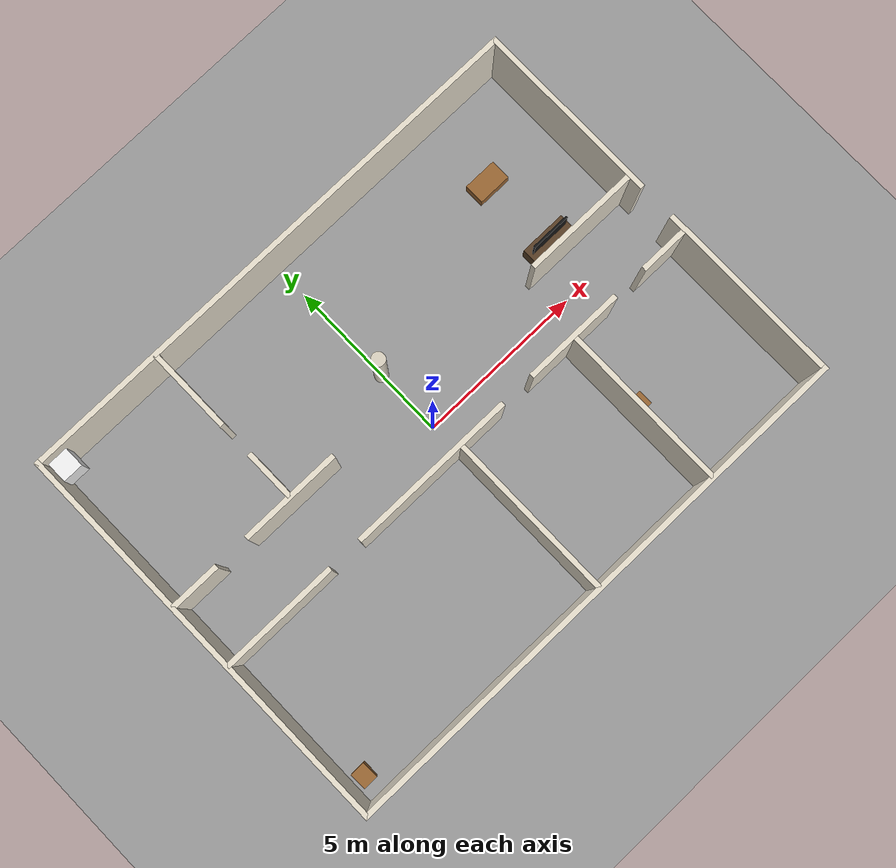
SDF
<sdf version="1.10">
 <world name="maze_world">
  <plugin name="gz::sim::systems::Physics" filename="gz-sim-physics-system"/>
  <plugin name="gz::sim::systems::UserCommands" filename="gz-sim-user-commands-system"/>
  <plugin name="gz::sim::systems::SceneBroadcaster" filename="gz-sim-scene-broadcaster-system"/>
  <plugin name="gz::sim::systems::Contact" filename="gz-sim-contact-system"/>
  <plugin name="gz::sim::systems::Sensors" filename="gz-sim-sensors-system">
   <render_engine>ogre2</render_engine>
  </plugin>
  <plugin name="gz::sim::systems::Imu" filename="gz-sim-imu-system"/>
  <gravity>0 0 -9.8000000000000007</gravity>
  <magnetic_field>5.5644999999999998e-06 2.2875799999999999e-05 -4.2388400000000002e-05</magnetic_field>
  <atmosphere type="adiabatic"/>
  <physics type="ode">
   <max_step_size>0.001</max_step_size>
   <real_time_factor>1</real_time_factor>
   <real_time_update_rate>1000</real_time_update_rate>
  </physics>
  <scene>
   <ambient>0.400000006 0.400000006 0.400000006 1</ambient>
   <background>0.699999988 0.699999988 0.699999988 1</background>
   <shadows>true</shadows>
  </scene>
  <model name="ground">
   <static>true</static>
   <link name="link">
    <collision name="collision">
     <geometry><plane><normal>0 0 1</normal><size>50 50</size></plane></geometry>
     <surface><friction><ode><mu>1</mu><mu2>1</mu2></ode></friction></surface>
    </collision>
    <visual name="visual">
     <geometry><plane><normal>0 0 1</normal><size>50 50</size></plane></geometry>
     <material>
      <ambient>0.5 0.5 0.5 1</ambient>
      <diffuse>0.600000024 0.600000024 0.600000024 1</diffuse>
      <specular>0.200000003 0.200000003 0.200000003 1</specular>
     </material>
    </visual>
    <inertial>
     <mass>1</mass>
     <inertia><ixx>1</ixx><ixy>0</ixy><ixz>0</ixz><iyy>1</iyy><iyz>0</iyz><izz>1</izz></inertia>
    </inertial>
   </link>
  </model>
  <model name="wall_ext_north">
   <static>true</static>
   <pose>0 6 1.25 0 0 0</pose>
   <link name="link">
    <collision name="col">
     <geometry><box><size>16.149999999999999 0.14999999999999999 2.5</size></box></geometry>
    </collision>
    <visual name="vis">
     <geometry><box><size>16.149999999999999 0.14999999999999999 2.5</size></box></geometry>
     <material>
      <ambient>0.850000024 0.819999993 0.75 1</ambient>
      <diffuse>0.899999976 0.870000005 0.800000012 1</diffuse>
      <specular>0.100000001 0.100000001 0.100000001 1</specular>
     </material>
    </visual>
    <inertial>
     <mass>1</mass>
     <inertia><ixx>1</ixx><ixy>0</ixy><ixz>0</ixz><iyy>1</iyy><iyz>0</iyz><izz>1</izz></inertia>
    </inertial>
   </link>
  </model>
  <model name="wall_ext_south">
   <static>true</static>
   <pose>0 -6 1.25 0 0 0</pose>
   <link name="link">
    <collision name="col">
     <geometry><box><size>16.149999999999999 0.14999999999999999 2.5</size></box></geometry>
    </collision>
    <visual name="vis">
     <geometry><box><size>16.149999999999999 0.14999999999999999 2.5</size></box></geometry>
     <material>
      <ambient>0.850000024 0.819999993 0.75 1</ambient>
      <diffuse>0.899999976 0.870000005 0.800000012 1</diffuse>
      <specular>0.100000001 0.100000001 0.100000001 1</specular>
     </material>
    </visual>
    <inertial>
     <mass>1</mass>
     <inertia><ixx>1</ixx><ixy>0</ixy><ixz>0</ixz><iyy>1</iyy><iyz>0</iyz><izz>1</izz></inertia>
    </inertial>
   </link>
  </model>
  <model name="wall_ext_west">
   <static>true</static>
   <pose>-8 0 1.25 0 0 0</pose>
   <link name="link">
    <collision name="col"><geometry><box><size>0.14999999999999999 12.15 2.5</size></box></geometry></collision>
    <visual name="vis">
     <geometry><box><size>0.14999999999999999 12.15 2.5</size></box></geometry>
     <material>
      <ambient>0.850000024 0.819999993 0.75 1</ambient>
      <diffuse>0.899999976 0.870000005 0.800000012 1</diffuse>
      <specular>0.100000001 0.100000001 0.100000001 1</specular>
     </material>
    </visual>
    <inertial>
     <mass>1</mass>
     <inertia><ixx>1</ixx><ixy>0</ixy><ixz>0</ixz><iyy>1</iyy><iyz>0</iyz><izz>1</izz></inertia>
    </inertial>
   </link>
  </model>
  <model name="wall_ext_east_bottom">
   <static>true</static>
   <pose>8 -3.25 1.25 0 0 0</pose>
   <link name="link">
    <collision name="col"><geometry><box><size>0.14999999999999999 5.5 2.5</size></box></geometry></collision>
    <visual name="vis">
     <geometry><box><size>0.14999999999999999 5.5 2.5</size></box></geometry>
     <material>
      <ambient>0.850000024 0.819999993 0.75 1</ambient>
      <diffuse>0.899999976 0.870000005 0.800000012 1</diffuse>
      <specular>0.100000001 0.100000001 0.100000001 1</specular>
     </material>
    </visual>
    <inertial>
     <mass>1</mass>
     <inertia><ixx>1</ixx><ixy>0</ixy><ixz>0</ixz><iyy>1</iyy><iyz>0</iyz><izz>1</izz></inertia>
    </inertial>
   </link>
  </model>
  <model name="wall_ext_east_top">
   <static>true</static>
   <pose>8 3.2972450256347656 1.25 0 0 0</pose>
   <link name="link">
    <collision name="col"><geometry><box><size>0.14999999999999999 5.5 2.5</size></box></geometry></collision>
    <visual name="vis">
     <geometry><box><size>0.14999999999999999 5.5 2.5</size></box></geometry>
     <material>
      <ambient>0.850000024 0.819999993 0.75 1</ambient>
      <diffuse>0.899999976 0.870000005 0.800000012 1</diffuse>
      <specular>0.100000001 0.100000001 0.100000001 1</specular>
     </material>
    </visual>
    <inertial>
     <mass>1</mass>
     <inertia><ixx>1</ixx><ixy>0</ixy><ixz>0</ixz><iyy>1</iyy><iyz>0</iyz><izz>1</izz></inertia>
    </inertial>
   </link>
  </model>
  <model name="wall_hall_n1">
   <static>true</static>
   <pose>-7.25 1 1.25 0 0 0</pose>
   <link name="link">
    <collision name="col"><geometry><box><size>1.5 0.14999999999999999 2.5</size></box></geometry></collision>
    <visual name="vis">
     <geometry><box><size>1.5 0.14999999999999999 2.5</size></box></geometry>
     <material>
      <ambient>0.850000024 0.819999993 0.75 1</ambient>
      <diffuse>0.899999976 0.870000005 0.800000012 1</diffuse>
      <specular>0.100000001 0.100000001 0.100000001 1</specular>
     </material>
    </visual>
    <inertial>
     <mass>1</mass>
     <inertia><ixx>1</ixx><ixy>0</ixy><ixz>0</ixz><iyy>1</iyy><iyz>0</iyz><izz>1</izz></inertia>
    </inertial>
   </link>
  </model>
  <model name="wall_hall_n2">
   <static>true</static>
   <pose>-4 1 1.25 0 0 0</pose>
   <link name="link">
    <collision name="col"><geometry><box><size>3 0.14999999999999999 2.5</size></box></geometry></collision>
    <visual name="vis">
     <geometry><box><size>3 0.14999999999999999 2.5</size></box></geometry>
     <material>
      <ambient>0.850000024 0.819999993 0.75 1</ambient>
      <diffuse>0.899999976 0.870000005 0.800000012 1</diffuse>
      <specular>0.100000001 0.100000001 0.100000001 1</specular>
     </material>
    </visual>
    <inertial>
     <mass>1</mass>
     <inertia><ixx>1</ixx><ixy>0</ixy><ixz>0</ixz><iyy>1</iyy><iyz>0</iyz><izz>1</izz></inertia>
    </inertial>
   </link>
  </model>
  <model name="wall_hall_n4">
   <static>true</static>
   <pose>6.25 1 1.25 0 0 0</pose>
   <link name="link">
    <collision name="col"><geometry><box><size>3.5 0.14999999999999999 2.5</size></box></geometry></collision>
    <visual name="vis">
     <geometry><box><size>3.5 0.14999999999999999 2.5</size></box></geometry>
     <material>
      <ambient>0.850000024 0.819999993 0.75 1</ambient>
      <diffuse>0.899999976 0.870000005 0.800000012 1</diffuse>
      <specular>0.100000001 0.100000001 0.100000001 1</specular>
     </material>
    </visual>
    <inertial>
     <mass>1</mass>
     <inertia><ixx>1</ixx><ixy>0</ixy><ixz>0</ixz><iyy>1</iyy><iyz>0</iyz><izz>1</izz></inertia>
    </inertial>
   </link>
  </model>
  <model name="wall_hall_s1">
   <static>true</static>
   <pose>-6.25 -1 1.25 0 0 0</pose>
   <link name="link">
    <collision name="col"><geometry><box><size>3.5 0.14999999999999999 2.5</size></box></geometry></collision>
    <visual name="vis">
     <geometry><box><size>3.5 0.14999999999999999 2.5</size></box></geometry>
     <material>
      <ambient>0.850000024 0.819999993 0.75 1</ambient>
      <diffuse>0.899999976 0.870000005 0.800000012 1</diffuse>
      <specular>0.100000001 0.100000001 0.100000001 1</specular>
     </material>
    </visual>
    <inertial>
     <mass>1</mass>
     <inertia><ixx>1</ixx><ixy>0</ixy><ixz>0</ixz><iyy>1</iyy><iyz>0</iyz><izz>1</izz></inertia>
    </inertial>
   </link>
  </model>
  <model name="wall_hall_s2">
   <static>true</static>
   <pose>-1 -1 1.25 0 0 0</pose>
   <link name="link">
    <collision name="col"><geometry><box><size>5 0.14999999999999999 2.5</size></box></geometry></collision>
    <visual name="vis">
     <geometry><box><size>5 0.14999999999999999 2.5</size></box></geometry>
     <material>
      <ambient>0.850000024 0.819999993 0.75 1</ambient>
      <diffuse>0.899999976 0.870000005 0.800000012 1</diffuse>
      <specular>0.100000001 0.100000001 0.100000001 1</specular>
     </material>
    </visual>
    <inertial>
     <mass>1</mass>
     <inertia><ixx>1</ixx><ixy>0</ixy><ixz>0</ixz><iyy>1</iyy><iyz>0</iyz><izz>1</izz></inertia>
    </inertial>
   </link>
  </model>
  <model name="wall_hall_s3">
   <static>true</static>
   <pose>4 -1 1.25 0 0 0</pose>
   <link name="link">
    <collision name="col"><geometry><box><size>3 0.14999999999999999 2.5</size></box></geometry></collision>
    <visual name="vis">
     <geometry><box><size>3 0.14999999999999999 2.5</size></box></geometry>
     <material>
      <ambient>0.850000024 0.819999993 0.75 1</ambient>
      <diffuse>0.899999976 0.870000005 0.800000012 1</diffuse>
      <specular>0.100000001 0.100000001 0.100000001 1</specular>
     </material>
    </visual>
    <inertial>
     <mass>1</mass>
     <inertia><ixx>1</ixx><ixy>0</ixy><ixz>0</ixz><iyy>1</iyy><iyz>0</iyz><izz>1</izz></inertia>
    </inertial>
   </link>
  </model>
  <model name="wall_hall_s4">
   <static>true</static>
   <pose>7.25 -1 1.25 0 0 0</pose>
   <link name="link">
    <collision name="col"><geometry><box><size>1.5 0.14999999999999999 2.5</size></box></geometry></collision>
    <visual name="vis">
     <geometry><box><size>1.5 0.14999999999999999 2.5</size></box></geometry>
     <material>
      <ambient>0.850000024 0.819999993 0.75 1</ambient>
      <diffuse>0.899999976 0.870000005 0.800000012 1</diffuse>
      <specular>0.100000001 0.100000001 0.100000001 1</specular>
     </material>
    </visual>
    <inertial>
     <mass>1</mass>
     <inertia><ixx>1</ixx><ixy>0</ixy><ixz>0</ixz><iyy>1</iyy><iyz>0</iyz><izz>1</izz></inertia>
    </inertial>
   </link>
  </model>
  <model name="wall_patio_cocina_1">
   <static>true</static>
   <pose>-4 1.75 1.25 0 0 0</pose>
   <link name="link">
    <collision name="col"><geometry><box><size>0.14999999999999999 1.5 2.5</size></box></geometry></collision>
    <visual name="vis">
     <geometry><box><size>0.14999999999999999 1.5 2.5</size></box></geometry>
     <material>
      <ambient>0.850000024 0.819999993 0.75 1</ambient>
      <diffuse>0.899999976 0.870000005 0.800000012 1</diffuse>
      <specular>0.100000001 0.100000001 0.100000001 1</specular>
     </material>
    </visual>
    <inertial>
     <mass>1</mass>
     <inertia><ixx>1</ixx><ixy>0</ixy><ixz>0</ixz><iyy>1</iyy><iyz>0</iyz><izz>1</izz></inertia>
    </inertial>
   </link>
  </model>
  <model name="wall_patio_cocina_2">
   <static>true</static>
   <pose>-4 4.75 1.25 0 0 0</pose>
   <link name="link">
    <collision name="col"><geometry><box><size>0.14999999999999999 2.5 2.5</size></box></geometry></collision>
    <visual name="vis">
     <geometry><box><size>0.14999999999999999 2.5 2.5</size></box></geometry>
     <material>
      <ambient>0.850000024 0.819999993 0.75 1</ambient>
      <diffuse>0.899999976 0.870000005 0.800000012 1</diffuse>
      <specular>0.100000001 0.100000001 0.100000001 1</specular>
     </material>
    </visual>
    <inertial>
     <mass>1</mass>
     <inertia><ixx>1</ixx><ixy>0</ixy><ixz>0</ixz><iyy>1</iyy><iyz>0</iyz><izz>1</izz></inertia>
    </inertial>
   </link>
  </model>
  <model name="wall_bed1_bath">
   <static>true</static>
   <pose>0 -3.5 1.25 0 0 0</pose>
   <link name="link">
    <collision name="col"><geometry><box><size>0.14999999999999999 5 2.5</size></box></geometry></collision>
    <visual name="vis">
     <geometry><box><size>0.14999999999999999 5 2.5</size></box></geometry>
     <material>
      <ambient>0.850000024 0.819999993 0.75 1</ambient>
      <diffuse>0.899999976 0.870000005 0.800000012 1</diffuse>
      <specular>0.100000001 0.100000001 0.100000001 1</specular>
     </material>
    </visual>
    <inertial>
     <mass>1</mass>
     <inertia><ixx>1</ixx><ixy>0</ixy><ixz>0</ixz><iyy>1</iyy><iyz>0</iyz><izz>1</izz></inertia>
    </inertial>
   </link>
  </model>
  <model name="wall_bath_bed2">
   <static>true</static>
   <pose>4 -3.5 1.25 0 0 0</pose>
   <link name="link">
    <collision name="col"><geometry><box><size>0.14999999999999999 5 2.5</size></box></geometry></collision>
    <visual name="vis">
     <geometry><box><size>0.14999999999999999 5 2.5</size></box></geometry>
     <material>
      <ambient>0.850000024 0.819999993 0.75 1</ambient>
      <diffuse>0.899999976 0.870000005 0.800000012 1</diffuse>
      <specular>0.100000001 0.100000001 0.100000001 1</specular>
     </material>
    </visual>
    <inertial>
     <mass>1</mass>
     <inertia><ixx>1</ixx><ixy>0</ixy><ixz>0</ixz><iyy>1</iyy><iyz>0</iyz><izz>1</izz></inertia>
    </inertial>
   </link>
  </model>
  <model name="laundry_washer">
   <static>true</static>
   <pose>-7.529210090637207 5.5 2.0166335105895996 0 0 0</pose>
   <link name="link">
    <collision name="col">
     <geometry><box><size>0.59999999999999998 0.59999999999999998 0.90000000000000002</size></box></geometry>
    </collision>
    <visual name="vis">
     <geometry><box><size>0.59999999999999998 0.59999999999999998 0.90000000000000002</size></box></geometry>
     <material>
      <ambient>0.920000017 0.920000017 0.920000017 1</ambient>
      <diffuse>0.949999988 0.949999988 0.949999988 1</diffuse>
      <specular>0.300000012 0.300000012 0.300000012 1</specular>
     </material>
    </visual>
    <inertial>
     <mass>1</mass>
     <inertia><ixx>1</ixx><ixy>0</ixy><ixz>0</ixz><iyy>1</iyy><iyz>0</iyz><izz>1</izz></inertia>
    </inertial>
   </link>
  </model>
  <model name="living_coffee_table">
   <static>true</static>
   <pose>5.6902451515197754 3.7999999523162842 0.20000000298023224 0 0 0</pose>
   <link name="link">
    <collision name="col">
     <geometry><box><size>1 0.59999999999999998 0.40000000000000002</size></box></geometry>
    </collision>
    <visual name="vis">
     <geometry><box><size>1 0.59999999999999998 0.40000000000000002</size></box></geometry>
     <material>
      <ambient>0.550000012 0.349999994 0.150000006 1</ambient>
      <diffuse>0.600000024 0.400000006 0.200000003 1</diffuse>
      <specular>0.150000006 0.150000006 0.150000006 1</specular>
     </material>
    </visual>
    <inertial>
     <mass>1</mass>
     <inertia><ixx>1</ixx><ixy>0</ixy><ixz>0</ixz><iyy>1</iyy><iyz>0</iyz><izz>1</izz></inertia>
    </inertial>
   </link>
  </model>
  <model name="living_tv_stand">
   <static>true</static>
   <pose>5.7299771308898926 1.5 0.30000001192092896 0 0 0</pose>
   <link name="link">
    <collision name="col">
     <geometry><box><size>1.3999999999999999 0.45000000000000001 0.59999999999999998</size></box></geometry>
    </collision>
    <visual name="vis">
     <geometry><box><size>1.3999999999999999 0.45000000000000001 0.59999999999999998</size></box></geometry>
     <material>
      <ambient>0.300000012 0.200000003 0.100000001 1</ambient>
      <diffuse>0.349999994 0.25 0.150000006 1</diffuse>
      <specular>0.100000001 0.100000001 0.100000001 1</specular>
     </material>
    </visual>
    <inertial>
     <mass>1</mass>
     <inertia><ixx>1</ixx><ixy>0</ixy><ixz>0</ixz><iyy>1</iyy><iyz>0</iyz><izz>1</izz></inertia>
    </inertial>
   </link>
  </model>
  <model name="living_tv">
   <static>true</static>
   <pose>5.7442898750305176 1.5 0.94999998807907104 0 0 0</pose>
   <link name="link">
    <collision name="col">
     <geometry><box><size>1.2 0.059999999999999998 0.69999999999999996</size></box></geometry>
    </collision>
    <visual name="vis">
     <geometry><box><size>1.2 0.059999999999999998 0.69999999999999996</size></box></geometry>
     <material>
      <ambient>0.0500000007 0.0500000007 0.0500000007 1</ambient>
      <diffuse>0.0799999982 0.0799999982 0.0799999982 1</diffuse>
      <specular>0.5 0.5 0.5 1</specular>
     </material>
    </visual>
    <inertial>
     <mass>1</mass>
     <inertia><ixx>1</ixx><ixy>0</ixy><ixz>0</ixz><iyy>1</iyy><iyz>0</iyz><izz>1</izz></inertia>
    </inertial>
   </link>
  </model>
  <model name="bedroom1_nightstand">
   <static>true</static>
   <pose>-7.560884952545166 -5.3195171356201172 0.25 0 0 -1.5452800163159324</pose>
   <link name="link">
    <collision name="col"><geometry><box><size>0.5 0.45000000000000001 0.5</size></box></geometry></collision>
    <visual name="vis">
     <geometry><box><size>0.5 0.45000000000000001 0.5</size></box></geometry>
     <material>
      <ambient>0.550000012 0.349999994 0.150000006 1</ambient>
      <diffuse>0.600000024 0.400000006 0.200000003 1</diffuse>
      <specular>0.100000001 0.100000001 0.100000001 1</specular>
     </material>
    </visual>
    <inertial>
     <mass>1</mass>
     <inertia><ixx>1</ixx><ixy>0</ixy><ixz>0</ixz><iyy>1</iyy><iyz>0</iyz><izz>1</izz></inertia>
    </inertial>
   </link>
  </model>
  <model name="bedroom2_nightstand">
   <static>true</static>
   <pose>4.3550353050231934 -3.353640079498291 0.25 0 0 0</pose>
   <link name="link">
    <collision name="col"><geometry><box><size>0.5 0.45000000000000001 0.5</size></box></geometry></collision>
    <visual name="vis">
     <geometry><box><size>0.5 0.45000000000000001 0.5</size></box></geometry>
     <material>
      <ambient>0.550000012 0.349999994 0.150000006 1</ambient>
      <diffuse>0.600000024 0.400000006 0.200000003 1</diffuse>
      <specular>0.100000001 0.100000001 0.100000001 1</specular>
     </material>
    </visual>
    <inertial>
     <mass>1</mass>
     <inertia><ixx>1</ixx><ixy>0</ixy><ixz>0</ixz><iyy>1</iyy><iyz>0</iyz><izz>1</izz></inertia>
    </inertial>
   </link>
  </model>
  <model name="hallway_column">
   <static>true</static>
   <pose>0 2 1.25 0 0 0</pose>
   <link name="link">
    <collision name="col">
     <geometry><cylinder><radius>0.2</radius><length>2.5</length></cylinder></geometry>
    </collision>
    <visual name="vis">
     <geometry><cylinder><radius>0.2</radius><length>2.5</length></cylinder></geometry>
     <material><ambient>0.85 0.82 0.75 1</ambient><diffuse>0.85 0.82 0.75 1</diffuse></material>
    </visual>
   </link>
  </model>
  <model name="overhead_camera">
   <static>true</static>
   <pose>0 0 150 0 1.5708 0</pose>
   <link name="link">
    <sensor name="map_cam" type="camera">
     <always_on>true</always_on>
     <update_rate>15</update_rate>
     <topic>overhead_cam</topic>
     <camera>
      <horizontal_fov>0.15</horizontal_fov>
      <image><width>1024</width><height>768</height><format>R8G8B8</format></image>
      <clip><near>0.5</near><far>200</far></clip>
     </camera>
    </sensor>
   </link>
  </model>
  <light name="sun" type="directional">
   <pose>0 0 10 0 0 0</pose>
   <intensity>0.4</intensity>
   <direction>-0.5 0.10000000000000001 -1</direction>
   <diffuse>1 1 1 1</diffuse>
   <specular>0.100000001 0.100000001 0.100000001 1</specular>
   <attenuation>
    <range>50</range>
    <linear>0.01</linear>
    <constant>0.90000000000000002</constant>
    <quadratic>0.001</quadratic>
   </attenuation>
   <spot><inner_angle>0</inner_angle><outer_angle>0</outer_angle><falloff>0</falloff></spot>
  </light>
 </world>
</sdf>
